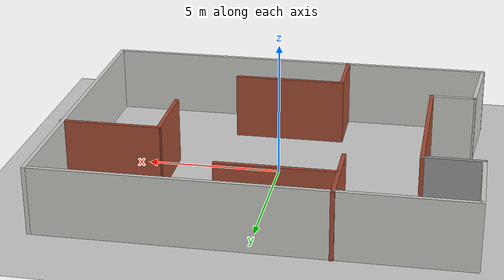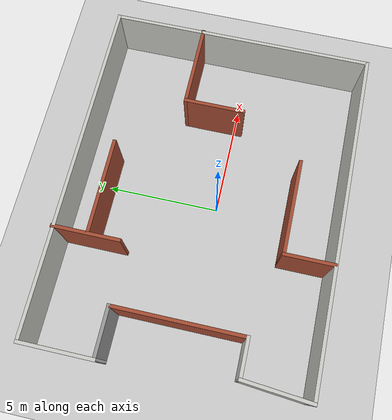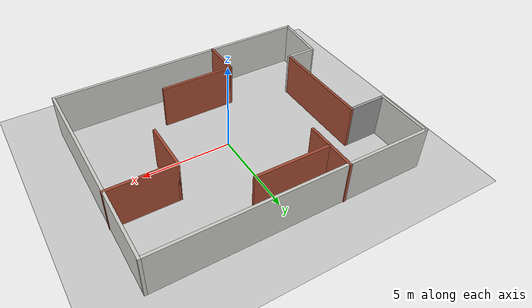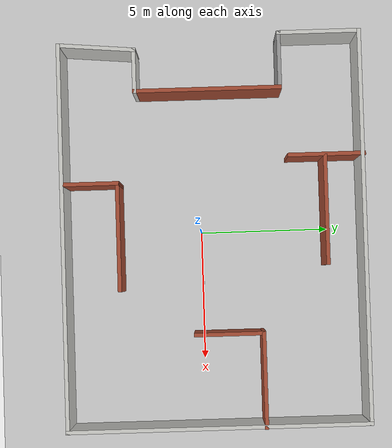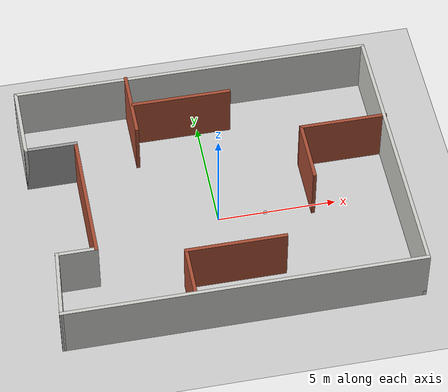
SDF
<sdf version="1.7">
 <world name="default">
  <light name="sun" type="directional">
   <pose>0 0 10 0 -0 0</pose>
   <diffuse>0.8 0.8 0.8 1</diffuse>
   <specular>0.2 0.2 0.2 1</specular>
   <attenuation>
    <range>1000</range>
    <constant>0.9</constant>
    <linear>0.01</linear>
    <quadratic>0.001</quadratic>
   </attenuation>
   <direction>-0.5 0.1 -0.9</direction>
   <spot><inner_angle>0</inner_angle><outer_angle>0</outer_angle><falloff>0</falloff></spot>
  </light>
  <model name="ground_plane">
   <static>1</static>
   <link name="link">
    <collision name="collision">
     <geometry><plane><normal>0 0 1</normal><size>100 100</size></plane></geometry>
     <surface><friction><ode><mu>100</mu><mu2>50</mu2></ode></friction></surface>
    </collision>
    <visual name="visual">
     <cast_shadows>0</cast_shadows>
     <geometry><plane><normal>0 0 1</normal><size>100 100</size></plane></geometry>
     <material>
      <script><uri>file://media/materials/scripts/gazebo.material</uri><name>Gazebo/Grey</name></script>
     </material>
    </visual>
   </link>
  </model>
  <gravity>0 0 -9.8</gravity>
  <magnetic_field>6e-06 2.3e-05 -4.2e-05</magnetic_field>
  <atmosphere type="adiabatic"/>
  <physics type="ode">
   <max_step_size>0.001</max_step_size>
   <real_time_factor>1</real_time_factor>
   <real_time_update_rate>1000</real_time_update_rate>
  </physics>
  <scene><ambient>0.4 0.4 0.4 1</ambient><background>0.7 0.7 0.7 1</background><shadows>1</shadows></scene>
  <spherical_coordinates>
   <surface_model>EARTH_WGS84</surface_model>
   <latitude_deg>0</latitude_deg>
   <longitude_deg>0</longitude_deg>
   <elevation>0</elevation>
   <heading_deg>0</heading_deg>
  </spherical_coordinates>
  <model name="my_world">
   <pose>0.005893 0.504692 0 0 -0 0</pose>
   <link name="Wall_10">
    <collision name="Wall_10_Collision">
     <geometry><box><size>3.25 0.15 2.5</size></box></geometry>
     <pose>0 0 1.25 0 -0 0</pose>
    </collision>
    <visual name="Wall_10_Visual">
     <pose>0 0 1.25 0 -0 0</pose>
     <geometry><box><size>3.25 0.15 2.5</size></box></geometry>
     <material>
      <script><uri>file://media/materials/scripts/gazebo.material</uri><name>Gazebo/CeilingTiled</name></script>
      <ambient>0.996078 0.47451 0.0196078 1</ambient>
     </material>
     <meta><layer>0</layer></meta>
    </visual>
    <pose>-7.56667 4.23079 0 0 -0 -1.5708</pose>
   </link>
   <link name="Wall_11">
    <collision name="Wall_11_Collision">
     <geometry><box><size>2.25 0.15 2.5</size></box></geometry>
     <pose>0 0 1.25 0 -0 0</pose>
    </collision>
    <visual name="Wall_11_Visual">
     <pose>0 0 1.25 0 -0 0</pose>
     <geometry><box><size>2.25 0.15 2.5</size></box></geometry>
     <material>
      <script><uri>file://media/materials/scripts/gazebo.material</uri><name>Gazebo/Grey</name></script>
      <ambient>1 1 1 1</ambient>
     </material>
     <meta><layer>0</layer></meta>
    </visual>
    <pose>-6.51667 2.68079 0 0 -0 0</pose>
   </link>
   <link name="Wall_12">
    <collision name="Wall_12_Collision">
     <geometry><box><size>5.75 0.15 2.5</size></box></geometry>
     <pose>0 0 1.25 0 -0 0</pose>
    </collision>
    <visual name="Wall_12_Visual">
     <pose>0 0 1.25 0 -0 0</pose>
     <geometry><box><size>5.75 0.15 2.5</size></box></geometry>
     <material>
      <script><uri>file://media/materials/scripts/gazebo.material</uri><name>Gazebo/Bricks</name></script>
      <ambient>1 1 1 1</ambient>
     </material>
     <meta><layer>0</layer></meta>
    </visual>
    <pose>-5.46667 -0.119207 0 0 -0 -1.5708</pose>
   </link>
   <link name="Wall_13">
    <collision name="Wall_13_Collision">
     <geometry><box><size>1.75 0.15 2.5</size></box></geometry>
     <pose>0 0 1.25 0 -0 0</pose>
    </collision>
    <visual name="Wall_13_Visual">
     <pose>0 0 1.25 0 -0 0</pose>
     <geometry><box><size>1.75 0.15 2.5</size></box></geometry>
     <material>
      <script><uri>file://media/materials/scripts/gazebo.material</uri><name>Gazebo/CeilingTiled</name></script>
      <ambient>1 1 1 1</ambient>
     </material>
     <meta><layer>0</layer></meta>
    </visual>
    <pose>-6.26667 -2.91921 0 0 -0 3.14159</pose>
   </link>
   <link name="Wall_14">
    <collision name="Wall_14_Collision">
     <geometry><box><size>3.06076 0.15 2.5</size></box></geometry>
     <pose>0 0 1.25 0 -0 0</pose>
    </collision>
    <visual name="Wall_14_Visual">
     <pose>0 0 1.25 0 -0 0</pose>
     <geometry><box><size>3.06076 0.15 2.5</size></box></geometry>
     <material>
      <script><uri>file://media/materials/scripts/gazebo.material</uri><name>Gazebo/CeilingTiled</name></script>
      <ambient>0.996078 0.47451 0.0196078 1</ambient>
     </material>
     <meta><layer>0</layer></meta>
    </visual>
    <pose>-7.19167 -4.36921 0 0 -0 -1.65679</pose>
   </link>
   <link name="Wall_16">
    <collision name="Wall_16_Collision">
     <geometry><box><size>3 0.15 2.5</size></box></geometry>
     <pose>0 0 1.25 0 -0 0</pose>
    </collision>
    <visual name="Wall_16_Visual">
     <pose>0 0 1.25 0 -0 0</pose>
     <geometry><box><size>3 0.15 2.5</size></box></geometry>
     <material>
      <script><uri>file://media/materials/scripts/gazebo.material</uri><name>Gazebo/Bricks</name></script>
      <ambient>1 1 1 1</ambient>
     </material>
     <meta><layer>0</layer></meta>
    </visual>
    <pose>-2.83041 4.40037 0 0 -0 -1.5708</pose>
   </link>
   <link name="Wall_18">
    <collision name="Wall_18_Collision">
     <geometry><box><size>4.25 0.15 2.5</size></box></geometry>
     <pose>0 0 1.25 0 -0 0</pose>
    </collision>
    <visual name="Wall_18_Visual">
     <pose>0 0 1.25 0 -0 0</pose>
     <geometry><box><size>4.25 0.15 2.5</size></box></geometry>
     <material>
      <script><uri>file://media/materials/scripts/gazebo.material</uri><name>Gazebo/Bricks</name></script>
      <ambient>1 1 1 1</ambient>
     </material>
     <meta><layer>0</layer></meta>
    </visual>
    <pose>-0.6995 4.32852 0 0 -0 0</pose>
   </link>
   <link name="Wall_20">
    <collision name="Wall_20_Collision">
     <geometry><box><size>3.75 0.15 2.5</size></box></geometry>
     <pose>0 0 1.25 0 -0 0</pose>
    </collision>
    <visual name="Wall_20_Visual">
     <pose>0 0 1.25 0 -0 0</pose>
     <geometry><box><size>3.75 0.15 2.5</size></box></geometry>
     <material>
      <script><uri>file://media/materials/scripts/gazebo.material</uri><name>Gazebo/Bricks</name></script>
      <ambient>1 1 1 1</ambient>
     </material>
     <meta><layer>0</layer></meta>
    </visual>
    <pose>5.76667 1.77981 0 0 -0 3.14159</pose>
   </link>
   <link name="Wall_21">
    <collision name="Wall_21_Collision">
     <geometry><box><size>2.75 0.15 2.5</size></box></geometry>
     <pose>0 0 1.25 0 -0 0</pose>
    </collision>
    <visual name="Wall_21_Visual">
     <pose>0 0 1.25 0 -0 0</pose>
     <geometry><box><size>2.75 0.15 2.5</size></box></geometry>
     <material>
      <script><uri>file://media/materials/scripts/gazebo.material</uri><name>Gazebo/Bricks</name></script>
      <ambient>1 1 1 1</ambient>
     </material>
     <meta><layer>0</layer></meta>
    </visual>
    <pose>3.96667 0.479814 0 0 -0 -1.5708</pose>
   </link>
   <link name="Wall_23">
    <collision name="Wall_23_Collision">
     <geometry><box><size>2.25 0.15 2.5</size></box></geometry>
     <pose>0 0 1.25 0 -0 0</pose>
    </collision>
    <visual name="Wall_23_Visual">
     <pose>0 0 1.25 0 -0 0</pose>
     <geometry><box><size>2.25 0.15 2.5</size></box></geometry>
     <material>
      <script><uri>file://media/materials/scripts/gazebo.material</uri><name>Gazebo/Bricks</name></script>
      <ambient>1 1 1 1</ambient>
     </material>
     <meta><layer>0</layer></meta>
    </visual>
    <pose>-1.94039 -4.73538 0 0 -0 1.5708</pose>
   </link>
   <link name="Wall_24">
    <collision name="Wall_24_Collision">
     <geometry><box><size>4.25 0.15 2.5</size></box></geometry>
     <pose>0 0 1.25 0 -0 0</pose>
    </collision>
    <visual name="Wall_24_Visual">
     <pose>0 0 1.25 0 -0 0</pose>
     <geometry><box><size>4.25 0.15 2.5</size></box></geometry>
     <material>
      <script><uri>file://media/materials/scripts/gazebo.material</uri><name>Gazebo/Bricks</name></script>
      <ambient>1 1 1 1</ambient>
     </material>
     <meta><layer>0</layer></meta>
    </visual>
    <pose>0.109612 -3.68538 0 0 -0 0</pose>
   </link>
   <link name="Wall_7">
    <collision name="Wall_7_Collision">
     <geometry><box><size>15 0.15 2.5</size></box></geometry>
     <pose>0 0 1.25 0 -0 0</pose>
    </collision>
    <visual name="Wall_7_Visual">
     <pose>0 0 1.25 0 -0 0</pose>
     <geometry><box><size>15 0.15 2.5</size></box></geometry>
     <material>
      <script><uri>file://media/materials/scripts/gazebo.material</uri><name>Gazebo/CeilingTiled</name></script>
      <ambient>1 0.764706 0.305882 1</ambient>
     </material>
     <meta><layer>0</layer></meta>
    </visual>
    <pose>0.108327 -5.81921 0 0 -0 0</pose>
   </link>
   <link name="Wall_8">
    <collision name="Wall_8_Collision">
     <geometry><box><size>11.75 0.15 2.5</size></box></geometry>
     <pose>0 0 1.25 0 -0 0</pose>
    </collision>
    <visual name="Wall_8_Visual">
     <pose>0 0 1.25 0 -0 0</pose>
     <geometry><box><size>11.75 0.15 2.5</size></box></geometry>
     <material>
      <script><uri>file://media/materials/scripts/gazebo.material</uri><name>Gazebo/CeilingTiled</name></script>
      <ambient>0.435294 0.796078 0.67451 1</ambient>
     </material>
     <meta><layer>0</layer></meta>
    </visual>
    <pose>7.53333 -0.019207 0 0 -0 1.5708</pose>
   </link>
   <link name="Wall_9">
    <collision name="Wall_9_Collision">
     <geometry><box><size>15.25 0.15 2.5</size></box></geometry>
     <pose>0 0 1.25 0 -0 0</pose>
    </collision>
    <visual name="Wall_9_Visual">
     <pose>0 0 1.25 0 -0 0</pose>
     <geometry><box><size>15.25 0.15 2.5</size></box></geometry>
     <material>
      <script><uri>file://media/materials/scripts/gazebo.material</uri><name>Gazebo/CeilingTiled</name></script>
      <ambient>1 0.764706 0.305882 1</ambient>
     </material>
     <meta><layer>0</layer></meta>
    </visual>
    <pose>-0.016673 5.78079 0 0 -0 3.14159</pose>
   </link>
   <static>1</static>
  </model>
  <model name="unit_box">
   <pose>2 0 0 0 -0 0</pose>
   <link name="link">
    <inertial>
     <mass>1</mass>
     <inertia>
      <ixx>0.166667</ixx>
      <ixy>0</ixy>
      <ixz>0</ixz>
      <iyy>0.166667</iyy>
      <iyz>0</iyz>
      <izz>0.166667</izz>
     </inertia>
    </inertial>
    <collision name="collision">
     <geometry><box><size>0.146938 0.090735 0.130512</size></box></geometry>
     <surface><friction>10</friction></surface>
    </collision>
    <visual name="visual">
     <geometry><box><size>0.146938 0.090735 0.130512</size></box></geometry>
     <material>
      <script><name>Gazebo/Grey</name><uri>file://media/materials/scripts/gazebo.material</uri></script>
     </material>
    </visual>
   </link>
  </model>
 </world>
</sdf>
